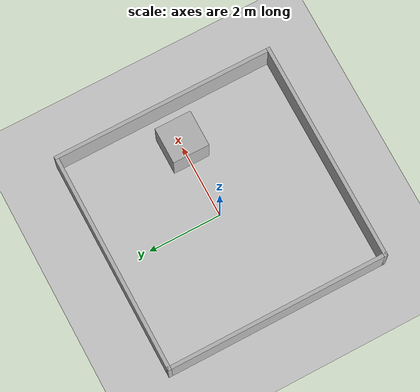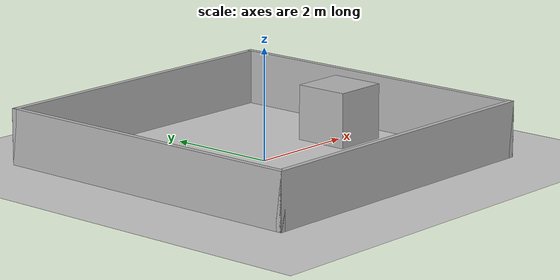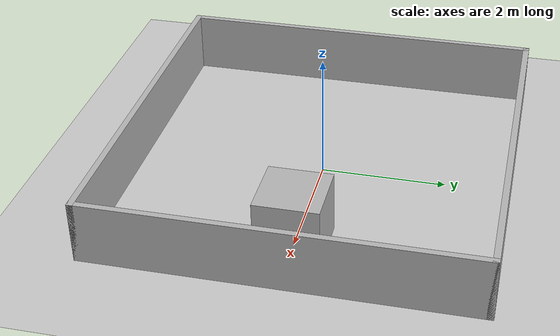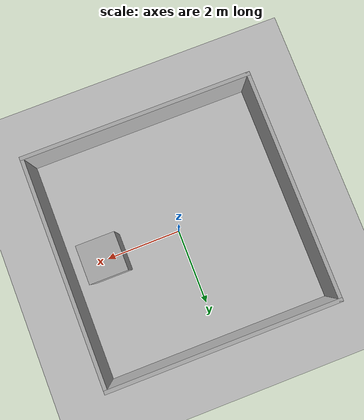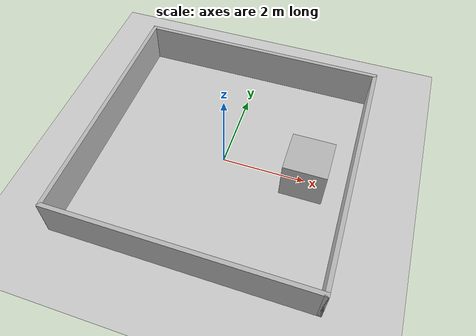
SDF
<?xml version="1.0" ?>
<sdf version="1.8">
  <world name="bomi_test_world">

    <physics name="1ms" type="ignored">
      <max_step_size>0.001</max_step_size>
      <real_time_factor>1.0</real_time_factor>
    </physics>

    <plugin
      filename="ignition-gazebo-physics-system"
      name="ignition::gazebo::systems::Physics">
    </plugin>

    <plugin
      filename="ignition-gazebo-user-commands-system"
      name="ignition::gazebo::systems::UserCommands">
    </plugin>

    <plugin
      filename="ignition-gazebo-scene-broadcaster-system"
      name="ignition::gazebo::systems::SceneBroadcaster">
    </plugin>

    <plugin
      filename="ignition-gazebo-sensors-system"
      name="ignition::gazebo::systems::Sensors">
      <render_engine>ogre2</render_engine>
    </plugin>

    <light type="directional" name="sun">
      <cast_shadows>true</cast_shadows>

      <pose>0 0 10 0 0 0</pose>

      <diffuse>0.8 0.8 0.8 1</diffuse>
      <specular>0.2 0.2 0.2 1</specular>

      <direction>-0.5 0.1 -0.9</direction>
    </light>

    <model name="ground_plane">
      <static>true</static>

      <link name="link">
        <collision name="collision">
          <geometry>
            <plane>
              <normal>0 0 1</normal>
              <size>20 20</size>
            </plane>
          </geometry>
        </collision>

        <visual name="visual">
          <geometry>
            <plane>
              <normal>0 0 1</normal>
              <size>20 20</size>
            </plane>
          </geometry>

          <material>
            <ambient>0.8 0.8 0.8 1</ambient>
            <diffuse>0.8 0.8 0.8 1</diffuse>
          </material>
        </visual>
      </link>
    </model>

    <model name="test_box">
      <static>true</static>

      <pose>2 0 0.5 0 0 0</pose>

      <link name="link">
        <collision name="collision">
          <geometry>
            <box>
              <size>1 1 1</size>
            </box>
          </geometry>
        </collision>

        <visual name="visual">
          <geometry>
            <box>
              <size>1 1 1</size>
            </box>
          </geometry>
        </visual>
      </link>
    </model>

    <!-- AMCL과 Nav2 검증 시 LiDAR가 위치를 구분할 수 있도록 만든 6 m x 6 m 경계 벽 -->
    <model name="north_wall">
      <static>true</static>
      <pose>0 3 0.5 0 0 0</pose>
      <link name="link">
        <collision name="collision">
          <geometry><box><size>6.1 0.1 1</size></box></geometry>
        </collision>
        <visual name="visual">
          <geometry><box><size>6.1 0.1 1</size></box></geometry>
        </visual>
      </link>
    </model>

    <model name="south_wall">
      <static>true</static>
      <pose>0 -3 0.5 0 0 0</pose>
      <link name="link">
        <collision name="collision">
          <geometry><box><size>6.1 0.1 1</size></box></geometry>
        </collision>
        <visual name="visual">
          <geometry><box><size>6.1 0.1 1</size></box></geometry>
        </visual>
      </link>
    </model>

    <model name="east_wall">
      <static>true</static>
      <pose>3 0 0.5 0 0 0</pose>
      <link name="link">
        <collision name="collision">
          <geometry><box><size>0.1 6.1 1</size></box></geometry>
        </collision>
        <visual name="visual">
          <geometry><box><size>0.1 6.1 1</size></box></geometry>
        </visual>
      </link>
    </model>

    <model name="west_wall">
      <static>true</static>
      <pose>-3 0 0.5 0 0 0</pose>
      <link name="link">
        <collision name="collision">
          <geometry><box><size>0.1 6.1 1</size></box></geometry>
        </collision>
        <visual name="visual">
          <geometry><box><size>0.1 6.1 1</size></box></geometry>
        </visual>
      </link>
    </model>

  </world>
</sdf>
